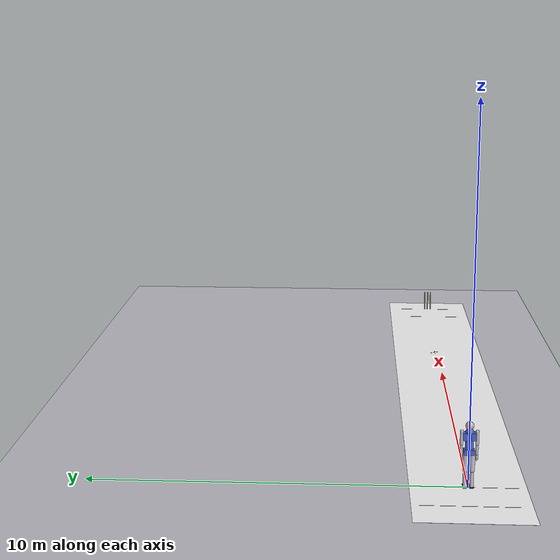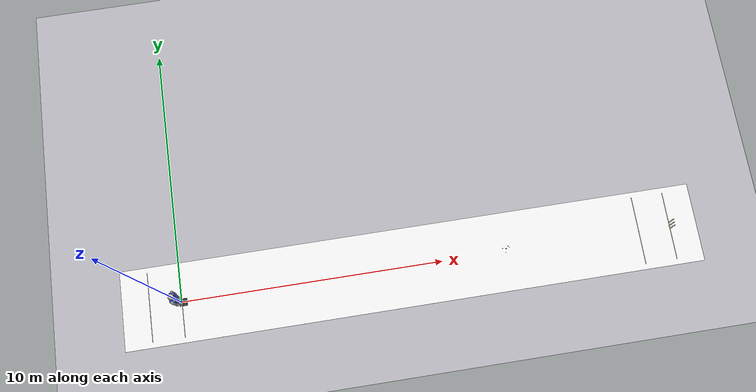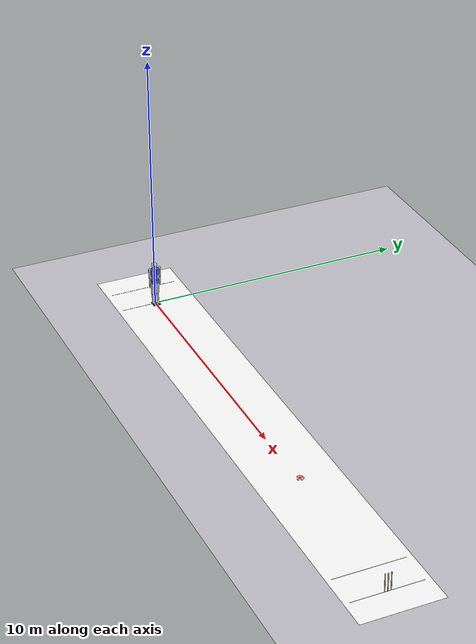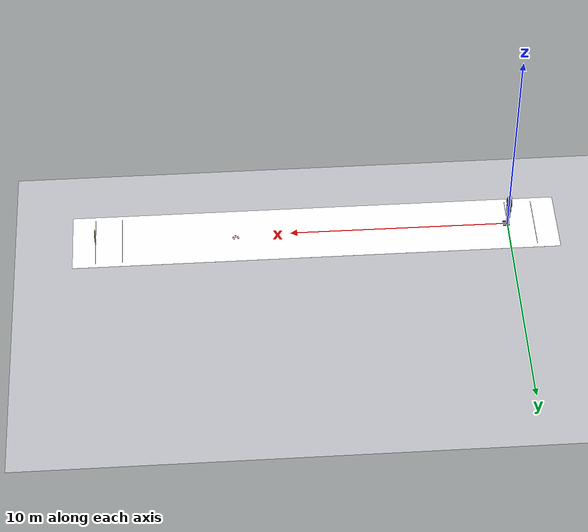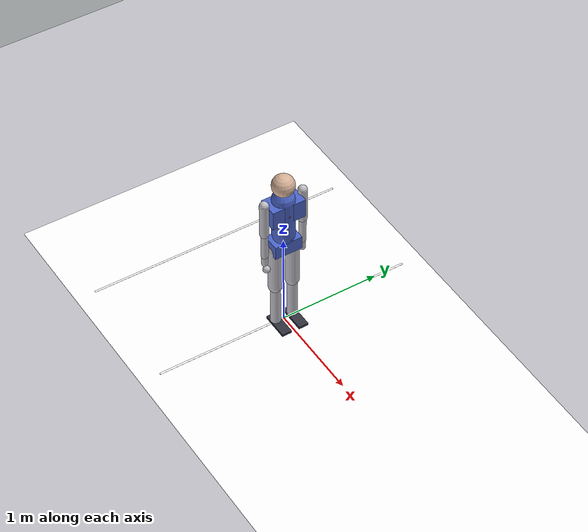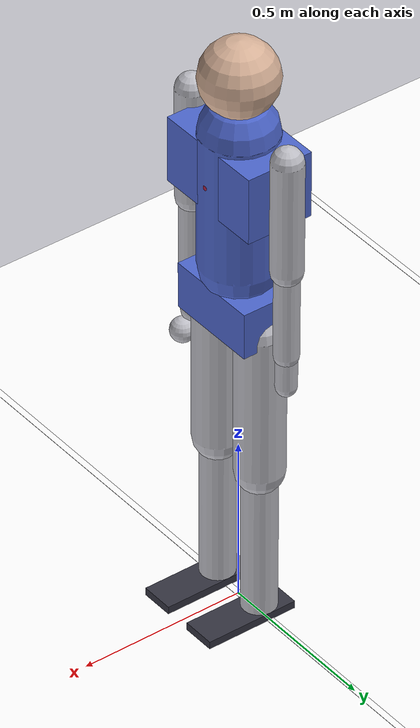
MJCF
<mujoco model="fast_bowler">
  <compiler angle="degree" inertiafromgeom="true" autolimits="true"/>
  <option timestep="0.001" gravity="0 0 -9.81" integrator="implicitfast" cone="elliptic" impratio="10">
    <flag energy="enable"/>
  </option>
  <size memory="20M"/>
  <visual>
    <global offwidth="1280" offheight="720"/>
  </visual>

  <default>
    <joint type="hinge" limited="true" damping="1.0" armature="0.02" stiffness="0"/>
    <geom type="capsule" condim="3" friction="1.0 0.005 0.0001" solref="0.008 1" solimp="0.95 0.99 0.001" margin="0.001" rgba="0.75 0.75 0.78 1"/>
    <motor ctrllimited="true" ctrlrange="-1 1"/>
    <site type="sphere" size="0.012" rgba="1 0 0 0.6"/>
    <default class="foot">
      <geom type="box" friction="1.2 0.01 0.0005" rgba="0.2 0.2 0.25 1"/>
    </default>
    <default class="marker">
      <geom type="box" contype="0" conaffinity="0" rgba="1 1 1 0.9"/>
    </default>
  </default>

  <asset>
    <texture name="grid" type="2d" builtin="checker" rgb1="0.35 0.55 0.25" rgb2="0.30 0.50 0.22" width="256" height="256"/>
    <material name="grass" texture="grid" texrepeat="40 40" reflectance="0"/>
    <material name="pitch" rgba="0.80 0.72 0.55 1"/>
    <material name="ball" rgba="0.55 0.05 0.05 1"/>
  </asset>

  <worldbody>
    <light pos="5 0 8" dir="0 0 -1" diffuse="0.9 0.9 0.9"/>
    <geom name="ground" type="plane" size="40 20 0.1" material="grass" friction="1.2 0.01 0.0005" condim="3"/>
    <!-- pitch strip, 3.05 m wide, from bowler's end to batter's end -->
    <geom name="pitch_strip" class="marker" pos="8.84 0 0.001" size="11.1 1.525 0.001" material="pitch"/>
    <!-- creases -->
    <geom name="bowler_popping_crease" class="marker" pos="0 0 0.002" size="0.01 1.32 0.001"/>
    <geom name="bowler_bowling_crease" class="marker" pos="-1.22 0 0.002" size="0.01 1.32 0.001"/>
    <geom name="batter_popping_crease" class="marker" pos="17.68 0 0.002" size="0.01 1.32 0.001"/>
    <geom name="batter_bowling_crease" class="marker" pos="18.90 0 0.002" size="0.01 1.32 0.001"/>
    <!-- stumps (visual only) -->
    <geom name="stump_b_c" type="cylinder" contype="0" conaffinity="0" pos="18.90 0 0.355" size="0.019 0.355" rgba="0.9 0.85 0.6 1"/>
    <geom name="stump_b_l" type="cylinder" contype="0" conaffinity="0" pos="18.90 0.114 0.355" size="0.019 0.355" rgba="0.9 0.85 0.6 1"/>
    <geom name="stump_b_r" type="cylinder" contype="0" conaffinity="0" pos="18.90 -0.114 0.355" size="0.019 0.355" rgba="0.9 0.85 0.6 1"/>
    <!-- landing target (moved at runtime) -->
    <body name="target" pos="12.5 0.1 0.0">
      <geom name="target_disc" type="cylinder" contype="0" conaffinity="0" size="0.15 0.002" rgba="1 0.2 0.1 0.6"/>
      <site name="target_site" pos="0 0 0" size="0.02" rgba="1 0 0 1"/>
    </body>

    <!-- BOWLER -->
    <body name="pelvis" pos="0 0 0.98">
      <freejoint name="root"/>
      <site name="pelvis_site" pos="0 0 0"/>
      <geom name="pelvis_geom" type="box" size="0.09 0.14 0.07" mass="12.0" rgba="0.3 0.4 0.8 1"/>

      <!-- torso via 3-DoF lumbar joint (L4/L5 proxy) -->
      <body name="torso" pos="0 0 0.10">
        <joint name="lumbar_flex" axis="0 -1 0" range="-25 70" damping="4" armature="0.05"/>
        <joint name="lumbar_lat"  axis="1 0 0"  range="-45 45" damping="4" armature="0.05"/>
        <joint name="lumbar_rot"  axis="0 0 1"  range="-50 50" damping="3" armature="0.05"/>
        <site name="lumbar_site" pos="0 0 0"/>
        <geom name="torso_geom" fromto="0 0 0.02 0 0 0.43" size="0.11" mass="30.0" rgba="0.3 0.4 0.8 1"/>
        <geom name="chest_geom" type="box" pos="0 0 0.32" size="0.10 0.17 0.10" mass="0.001" contype="0" conaffinity="0" rgba="0.3 0.4 0.8 1"/>
        <site name="sternum_site" pos="0.1 0 0.3"/>
        <site name="shoulder_l_site" pos="0 0.20 0.45"/>
        <site name="shoulder_r_site" pos="0 -0.20 0.45"/>

        <body name="head" pos="0 0 0.50">
          <geom name="head_geom" type="sphere" pos="0 0 0.10" size="0.11" mass="6.9" rgba="0.85 0.7 0.6 1"/>
          <site name="head_site" pos="0 0 0.10"/>
        </body>

        <!-- LEFT arm (front arm for a right-arm bowler) -->
        <body name="upper_arm_l" pos="0 0.20 0.45">
          <joint name="shoulder_l_flex" axis="0 -1 0" range="-90 200" damping="1.5"/>
          <joint name="shoulder_l_abd"  axis="1 0 0"  range="-30 170" damping="1.5"/>
          <joint name="shoulder_l_rot"  axis="0 0 1"  range="-90 90"  damping="1.5"/>
          <geom name="upper_arm_l_geom" fromto="0 0 0 0 0 -0.34" size="0.045" mass="2.4"/>
          <body name="forearm_l" pos="0 0 -0.34">
            <joint name="elbow_l_flex" axis="0 -1 0" range="-10 150" damping="1.0"/>
            <site name="elbow_l_site" pos="0 0 0"/>
            <geom name="forearm_l_geom" fromto="0 0 0 0 0 -0.27" size="0.035" mass="1.4"/>
            <body name="hand_l" pos="0 0 -0.27">
              <joint name="wrist_l_flex" axis="0 -1 0" range="-70 80" damping="0.5"/>
              <geom name="hand_l_geom" fromto="0 0 0 0 0 -0.10" size="0.03" mass="0.5"/>
              <site name="hand_l_site" pos="0 0 -0.10"/>
            </body>
          </body>
        </body>

        <!-- RIGHT arm (bowling arm) -->
        <body name="upper_arm_r" pos="0 -0.20 0.45">
          <joint name="shoulder_r_flex" axis="0 -1 0" range="-290 60" damping="1.5"/>
          <joint name="shoulder_r_abd"  axis="-1 0 0" range="-30 170" damping="1.5"/>
          <joint name="shoulder_r_rot"  axis="0 0 1"  range="-90 90"  damping="1.5"/>
          <site name="shoulder_r_joint_site" pos="0 0 0"/>
          <geom name="upper_arm_r_geom" fromto="0 0 0 0 0 -0.34" size="0.045" mass="2.4"/>
          <body name="forearm_r" pos="0 0 -0.34">
            <joint name="elbow_r_flex" axis="0 -1 0" range="-10 150" damping="1.0"/>
            <site name="elbow_r_site" pos="0 0 0"/>
            <geom name="forearm_r_geom" fromto="0 0 0 0 0 -0.27" size="0.035" mass="1.4"/>
            <body name="hand_r" pos="0 0 -0.27">
              <joint name="wrist_r_flex" axis="0 -1 0" range="-70 80" damping="0.5"/>
              <site name="wrist_r_site" pos="0 0 0"/>
              <geom name="hand_r_geom" fromto="0 0 0 0 0 -0.10" size="0.03" mass="0.5"/>
              <!-- ball centre sits just beyond the fingertips, in front of the palm -->
              <site name="ball_site" pos="0.03 0 -0.15" size="0.02" rgba="0 1 0 0.8"/>
            </body>
          </body>
        </body>
      </body>

      <!-- LEFT leg (front leg for a right-arm bowler) -->
      <body name="thigh_l" pos="0 0.09 -0.05">
        <joint name="hip_l_flex" axis="0 -1 0" range="-30 120" damping="3" armature="0.05"/>
        <joint name="hip_l_abd"  axis="1 0 0"  range="-45 30"  damping="3" armature="0.05"/>
        <joint name="hip_l_rot"  axis="0 0 1"  range="-45 45"  damping="3" armature="0.05"/>
        <site name="hip_l_site" pos="0 0 0"/>
        <geom name="thigh_l_geom" fromto="0 0 0 0 0 -0.45" size="0.07" mass="8.5"/>
        <body name="shank_l" pos="0 0 -0.45">
          <joint name="knee_l_flex" axis="0 1 0" range="-2 150" damping="2" armature="0.05"/>
          <site name="knee_l_site" pos="0 0 0"/>
          <geom name="shank_l_geom" fromto="0 0 0 0 0 -0.455" size="0.05" mass="4.0"/>
          <body name="foot_l" pos="0 0 -0.455">
            <joint name="ankle_l_pf" axis="0 1 0" range="-30 50" damping="1.5" armature="0.03"/>
            <site name="ankle_l_site" pos="0 0 0"/>
            <geom name="foot_l_geom" class="foot" pos="0.06 0 -0.035" size="0.14 0.05 0.035" mass="1.2"/>
            <site name="heel_l_site" pos="-0.06 0 -0.07"/>
            <site name="toe_l_site" pos="0.20 0 -0.07"/>
          </body>
        </body>
      </body>

      <!-- RIGHT leg (back leg) -->
      <body name="thigh_r" pos="0 -0.09 -0.05">
        <joint name="hip_r_flex" axis="0 -1 0" range="-30 120" damping="3" armature="0.05"/>
        <joint name="hip_r_abd"  axis="-1 0 0" range="-45 30"  damping="3" armature="0.05"/>
        <joint name="hip_r_rot"  axis="0 0 1"  range="-45 45"  damping="3" armature="0.05"/>
        <site name="hip_r_site" pos="0 0 0"/>
        <geom name="thigh_r_geom" fromto="0 0 0 0 0 -0.45" size="0.07" mass="8.5"/>
        <body name="shank_r" pos="0 0 -0.45">
          <joint name="knee_r_flex" axis="0 1 0" range="-2 150" damping="2" armature="0.05"/>
          <site name="knee_r_site" pos="0 0 0"/>
          <geom name="shank_r_geom" fromto="0 0 0 0 0 -0.455" size="0.05" mass="4.0"/>
          <body name="foot_r" pos="0 0 -0.455">
            <joint name="ankle_r_pf" axis="0 1 0" range="-30 50" damping="1.5" armature="0.03"/>
            <site name="ankle_r_site" pos="0 0 0"/>
            <geom name="foot_r_geom" class="foot" pos="0.06 0 -0.035" size="0.14 0.05 0.035" mass="1.2"/>
            <site name="heel_r_site" pos="-0.06 0 -0.07"/>
            <site name="toe_r_site" pos="0.20 0 -0.07"/>
          </body>
        </body>
      </body>
    </body>

    <!-- BALL -->
    <!-- Initial position = ball_site in the zero pose (arm hanging): computed in the env at reset. -->
    <body name="ball" pos="0.03 -0.20 0.77">
      <freejoint name="ball_free"/>
      <geom name="ball_geom" type="sphere" size="0.036" mass="0.156" material="ball" friction="0.6 0.005 0.0001" solref="0.004 1" contype="2" conaffinity="1"/>
      <site name="ball_centre" pos="0 0 0" size="0.005"/>
    </body>
  </worldbody>

  <contact>
    <!-- the ball must not collide with the bowler while held -->
    <exclude body1="ball" body2="hand_r"/>
    <exclude body1="ball" body2="forearm_r"/>
    <exclude body1="ball" body2="upper_arm_r"/>
    <exclude body1="ball" body2="torso"/>
    <exclude body1="ball" body2="head"/>
    <exclude body1="ball" body2="pelvis"/>
    <exclude body1="ball" body2="thigh_r"/>
    <exclude body1="ball" body2="thigh_l"/>
    <!-- adjacent segments -->
    <exclude body1="pelvis" body2="torso"/>
    <exclude body1="pelvis" body2="thigh_l"/>
    <exclude body1="pelvis" body2="thigh_r"/>
    <exclude body1="thigh_l" body2="shank_l"/>
    <exclude body1="thigh_r" body2="shank_r"/>
    <exclude body1="shank_l" body2="foot_l"/>
    <exclude body1="shank_r" body2="foot_r"/>
    <exclude body1="torso" body2="upper_arm_l"/>
    <exclude body1="torso" body2="upper_arm_r"/>
    <exclude body1="torso" body2="head"/>
    <exclude body1="upper_arm_l" body2="forearm_l"/>
    <exclude body1="upper_arm_r" body2="forearm_r"/>
    <exclude body1="forearm_l" body2="hand_l"/>
    <exclude body1="forearm_r" body2="hand_r"/>
    <exclude body1="torso" body2="forearm_r"/>
    <exclude body1="torso" body2="forearm_l"/>
    <exclude body1="torso" body2="hand_r"/>
    <exclude body1="torso" body2="hand_l"/>
    <exclude body1="head" body2="upper_arm_r"/>
    <exclude body1="head" body2="upper_arm_l"/>
    <exclude body1="head" body2="forearm_r"/>
    <exclude body1="head" body2="forearm_l"/>
    <exclude body1="head" body2="hand_r"/>
    <exclude body1="head" body2="hand_l"/>
    <exclude body1="pelvis" body2="hand_r"/>
    <exclude body1="pelvis" body2="hand_l"/>
    <exclude body1="pelvis" body2="forearm_r"/>
    <exclude body1="pelvis" body2="forearm_l"/>
  </contact>

  <equality>
    <!-- ball-in-hand: deactivated at release -->
    <weld name="ball_grip" body1="hand_r" body2="ball" solref="0.002 1" solimp="0.99 0.999 0.0001"/>
  </equality>

  <actuator>
    <motor name="a_lumbar_flex" joint="lumbar_flex" gear="400"/>
    <motor name="a_lumbar_lat"  joint="lumbar_lat"  gear="250"/>
    <motor name="a_lumbar_rot"  joint="lumbar_rot"  gear="180"/>

    <motor name="a_shoulder_l_flex" joint="shoulder_l_flex" gear="150"/>
    <motor name="a_shoulder_l_abd"  joint="shoulder_l_abd"  gear="120"/>
    <motor name="a_shoulder_l_rot"  joint="shoulder_l_rot"  gear="60"/>
    <motor name="a_elbow_l_flex"    joint="elbow_l_flex"    gear="80"/>
    <motor name="a_wrist_l_flex"    joint="wrist_l_flex"    gear="25"/>

    <motor name="a_shoulder_r_flex" joint="shoulder_r_flex" gear="220"/>
    <motor name="a_shoulder_r_abd"  joint="shoulder_r_abd"  gear="160"/>
    <motor name="a_shoulder_r_rot"  joint="shoulder_r_rot"  gear="70"/>
    <motor name="a_elbow_r_flex"    joint="elbow_r_flex"    gear="90"/>
    <motor name="a_wrist_r_flex"    joint="wrist_r_flex"    gear="30"/>

    <motor name="a_hip_l_flex" joint="hip_l_flex" gear="320"/>
    <motor name="a_hip_l_abd"  joint="hip_l_abd"  gear="200"/>
    <motor name="a_hip_l_rot"  joint="hip_l_rot"  gear="120"/>
    <motor name="a_knee_l_flex" joint="knee_l_flex" gear="300"/>
    <motor name="a_ankle_l_pf"  joint="ankle_l_pf"  gear="220"/>

    <motor name="a_hip_r_flex" joint="hip_r_flex" gear="320"/>
    <motor name="a_hip_r_abd"  joint="hip_r_abd"  gear="200"/>
    <motor name="a_hip_r_rot"  joint="hip_r_rot"  gear="120"/>
    <motor name="a_knee_r_flex" joint="knee_r_flex" gear="300"/>
    <motor name="a_ankle_r_pf"  joint="ankle_r_pf"  gear="220"/>
  </actuator>

  <sensor>
    <!-- 6-axis interaction load across the lumbar joint: lumbar compression/shear proxy -->
    <jointpos name="s_lumbar_flex" joint="lumbar_flex"/>
    <jointpos name="s_lumbar_lat"  joint="lumbar_lat"/>
    <jointpos name="s_lumbar_rot"  joint="lumbar_rot"/>
    <velocimeter name="s_ball_vel" site="ball_centre"/>
    <framepos name="s_ball_pos" objtype="site" objname="ball_centre"/>
    <accelerometer name="s_pelvis_acc" site="pelvis_site"/>
  </sensor>
</mujoco>
